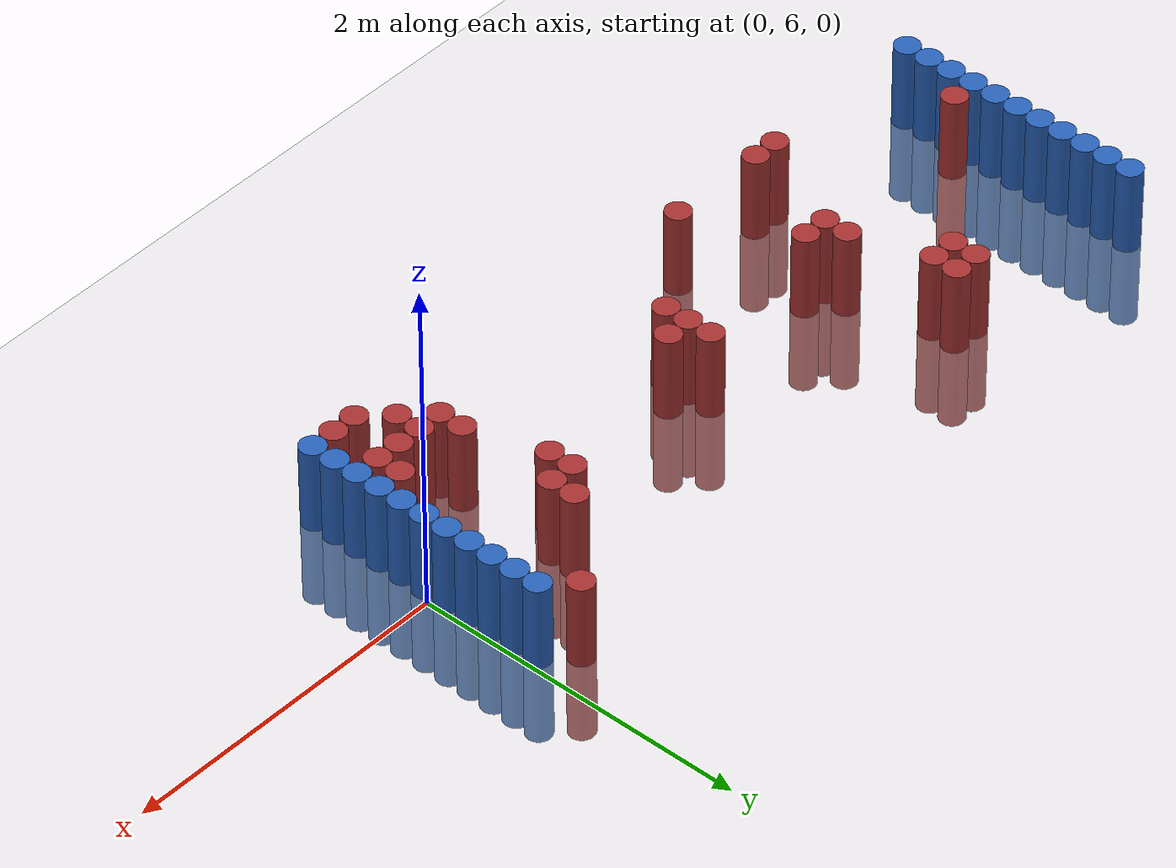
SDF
<sdf version="1.6">
 <world name="default">
  <model name="ground_plane">
   <static>1</static>
   <link name="link">
    <collision name="collision">
     <geometry><plane><normal>0 0 1</normal><size>100 100</size></plane></geometry>
     <surface><friction><ode><mu>100</mu><mu2>50</mu2></ode></friction></surface>
    </collision>
    <visual name="visual">
     <cast_shadows>0</cast_shadows>
     <geometry><plane><normal>0 0 1</normal><size>100 100</size></plane></geometry>
     <material>
      <script><uri>file://media/materials/scripts/gazebo.material</uri><name>Gazebo/Grey</name></script>
     </material>
    </visual>
   </link>
  </model>
  <model name="unit_cylinder_97">
   <static>1</static>
   <pose>-4.425000 5.325000 0.000000 0.000000 0.000000 0.000000</pose>
   <link name="link">
    <inertial>
     <mass>1</mass>
     <inertia><ixx>0.145833</ixx><ixy>0</ixy><ixz>0</ixz><iyy>0.145833</iyy><iyz>0</iyz><izz>0.125</izz></inertia>
    </inertial>
    <collision name="collision">
     <geometry><cylinder><radius>0.075000</radius><length>1</length></cylinder></geometry>
    </collision>
    <visual name="visual">
     <geometry><cylinder><radius>0.075000</radius><length>1</length></cylinder></geometry>
     <material>
      <ambient>0.152000 0.379000 0.720000 1</ambient>
      <diffuse>0.152000 0.379000 0.720000 1</diffuse>
     </material>
     <material>
      <script><name>Gazebo/Grey</name><uri>file://media/materials/scripts/gazebo.material</uri></script>
     </material>
    </visual>
   </link>
  </model>
  <model name="unit_cylinder_98">
   <static>1</static>
   <pose>-4.425000 5.475000 0.000000 0.000000 0.000000 0.000000</pose>
   <link name="link">
    <inertial>
     <mass>1</mass>
     <inertia><ixx>0.145833</ixx><ixy>0</ixy><ixz>0</ixz><iyy>0.145833</iyy><iyz>0</iyz><izz>0.125</izz></inertia>
    </inertial>
    <collision name="collision">
     <geometry><cylinder><radius>0.075000</radius><length>1</length></cylinder></geometry>
    </collision>
    <visual name="visual">
     <geometry><cylinder><radius>0.075000</radius><length>1</length></cylinder></geometry>
     <material>
      <ambient>0.152000 0.379000 0.720000 1</ambient>
      <diffuse>0.152000 0.379000 0.720000 1</diffuse>
     </material>
     <material>
      <script><name>Gazebo/Grey</name><uri>file://media/materials/scripts/gazebo.material</uri></script>
     </material>
    </visual>
   </link>
  </model>
  <model name="unit_cylinder_99">
   <static>1</static>
   <pose>-4.425000 5.625000 0.000000 0.000000 0.000000 0.000000</pose>
   <link name="link">
    <inertial>
     <mass>1</mass>
     <inertia><ixx>0.145833</ixx><ixy>0</ixy><ixz>0</ixz><iyy>0.145833</iyy><iyz>0</iyz><izz>0.125</izz></inertia>
    </inertial>
    <collision name="collision">
     <geometry><cylinder><radius>0.075000</radius><length>1</length></cylinder></geometry>
    </collision>
    <visual name="visual">
     <geometry><cylinder><radius>0.075000</radius><length>1</length></cylinder></geometry>
     <material>
      <ambient>0.152000 0.379000 0.720000 1</ambient>
      <diffuse>0.152000 0.379000 0.720000 1</diffuse>
     </material>
     <material>
      <script><name>Gazebo/Grey</name><uri>file://media/materials/scripts/gazebo.material</uri></script>
     </material>
    </visual>
   </link>
  </model>
  <model name="unit_cylinder_100">
   <static>1</static>
   <pose>-4.425000 5.775000 0.000000 0.000000 0.000000 0.000000</pose>
   <link name="link">
    <inertial>
     <mass>1</mass>
     <inertia><ixx>0.145833</ixx><ixy>0</ixy><ixz>0</ixz><iyy>0.145833</iyy><iyz>0</iyz><izz>0.125</izz></inertia>
    </inertial>
    <collision name="collision">
     <geometry><cylinder><radius>0.075000</radius><length>1</length></cylinder></geometry>
    </collision>
    <visual name="visual">
     <geometry><cylinder><radius>0.075000</radius><length>1</length></cylinder></geometry>
     <material>
      <ambient>0.152000 0.379000 0.720000 1</ambient>
      <diffuse>0.152000 0.379000 0.720000 1</diffuse>
     </material>
     <material>
      <script><name>Gazebo/Grey</name><uri>file://media/materials/scripts/gazebo.material</uri></script>
     </material>
    </visual>
   </link>
  </model>
  <model name="unit_cylinder_101">
   <static>1</static>
   <pose>-4.425000 5.925000 0.000000 0.000000 0.000000 0.000000</pose>
   <link name="link">
    <inertial>
     <mass>1</mass>
     <inertia><ixx>0.145833</ixx><ixy>0</ixy><ixz>0</ixz><iyy>0.145833</iyy><iyz>0</iyz><izz>0.125</izz></inertia>
    </inertial>
    <collision name="collision">
     <geometry><cylinder><radius>0.075000</radius><length>1</length></cylinder></geometry>
    </collision>
    <visual name="visual">
     <geometry><cylinder><radius>0.075000</radius><length>1</length></cylinder></geometry>
     <material>
      <ambient>0.152000 0.379000 0.720000 1</ambient>
      <diffuse>0.152000 0.379000 0.720000 1</diffuse>
     </material>
     <material>
      <script><name>Gazebo/Grey</name><uri>file://media/materials/scripts/gazebo.material</uri></script>
     </material>
    </visual>
   </link>
  </model>
  <model name="unit_cylinder_102">
   <static>1</static>
   <pose>-4.425000 6.075000 0.000000 0.000000 0.000000 0.000000</pose>
   <link name="link">
    <inertial>
     <mass>1</mass>
     <inertia><ixx>0.145833</ixx><ixy>0</ixy><ixz>0</ixz><iyy>0.145833</iyy><iyz>0</iyz><izz>0.125</izz></inertia>
    </inertial>
    <collision name="collision">
     <geometry><cylinder><radius>0.075000</radius><length>1</length></cylinder></geometry>
    </collision>
    <visual name="visual">
     <geometry><cylinder><radius>0.075000</radius><length>1</length></cylinder></geometry>
     <material>
      <ambient>0.152000 0.379000 0.720000 1</ambient>
      <diffuse>0.152000 0.379000 0.720000 1</diffuse>
     </material>
     <material>
      <script><name>Gazebo/Grey</name><uri>file://media/materials/scripts/gazebo.material</uri></script>
     </material>
    </visual>
   </link>
  </model>
  <model name="unit_cylinder_103">
   <static>1</static>
   <pose>-4.425000 6.225000 0.000000 0.000000 0.000000 0.000000</pose>
   <link name="link">
    <inertial>
     <mass>1</mass>
     <inertia><ixx>0.145833</ixx><ixy>0</ixy><ixz>0</ixz><iyy>0.145833</iyy><iyz>0</iyz><izz>0.125</izz></inertia>
    </inertial>
    <collision name="collision">
     <geometry><cylinder><radius>0.075000</radius><length>1</length></cylinder></geometry>
    </collision>
    <visual name="visual">
     <geometry><cylinder><radius>0.075000</radius><length>1</length></cylinder></geometry>
     <material>
      <ambient>0.152000 0.379000 0.720000 1</ambient>
      <diffuse>0.152000 0.379000 0.720000 1</diffuse>
     </material>
     <material>
      <script><name>Gazebo/Grey</name><uri>file://media/materials/scripts/gazebo.material</uri></script>
     </material>
    </visual>
   </link>
  </model>
  <model name="unit_cylinder_104">
   <static>1</static>
   <pose>-4.425000 6.375000 0.000000 0.000000 0.000000 0.000000</pose>
   <link name="link">
    <inertial>
     <mass>1</mass>
     <inertia><ixx>0.145833</ixx><ixy>0</ixy><ixz>0</ixz><iyy>0.145833</iyy><iyz>0</iyz><izz>0.125</izz></inertia>
    </inertial>
    <collision name="collision">
     <geometry><cylinder><radius>0.075000</radius><length>1</length></cylinder></geometry>
    </collision>
    <visual name="visual">
     <geometry><cylinder><radius>0.075000</radius><length>1</length></cylinder></geometry>
     <material>
      <ambient>0.152000 0.379000 0.720000 1</ambient>
      <diffuse>0.152000 0.379000 0.720000 1</diffuse>
     </material>
     <material>
      <script><name>Gazebo/Grey</name><uri>file://media/materials/scripts/gazebo.material</uri></script>
     </material>
    </visual>
   </link>
  </model>
  <model name="unit_cylinder_105">
   <static>1</static>
   <pose>-4.425000 6.525000 0.000000 0.000000 0.000000 0.000000</pose>
   <link name="link">
    <inertial>
     <mass>1</mass>
     <inertia><ixx>0.145833</ixx><ixy>0</ixy><ixz>0</ixz><iyy>0.145833</iyy><iyz>0</iyz><izz>0.125</izz></inertia>
    </inertial>
    <collision name="collision">
     <geometry><cylinder><radius>0.075000</radius><length>1</length></cylinder></geometry>
    </collision>
    <visual name="visual">
     <geometry><cylinder><radius>0.075000</radius><length>1</length></cylinder></geometry>
     <material>
      <ambient>0.152000 0.379000 0.720000 1</ambient>
      <diffuse>0.152000 0.379000 0.720000 1</diffuse>
     </material>
     <material>
      <script><name>Gazebo/Grey</name><uri>file://media/materials/scripts/gazebo.material</uri></script>
     </material>
    </visual>
   </link>
  </model>
  <model name="unit_cylinder_106">
   <static>1</static>
   <pose>-4.425000 6.675000 0.000000 0.000000 0.000000 0.000000</pose>
   <link name="link">
    <inertial>
     <mass>1</mass>
     <inertia><ixx>0.145833</ixx><ixy>0</ixy><ixz>0</ixz><iyy>0.145833</iyy><iyz>0</iyz><izz>0.125</izz></inertia>
    </inertial>
    <collision name="collision">
     <geometry><cylinder><radius>0.075000</radius><length>1</length></cylinder></geometry>
    </collision>
    <visual name="visual">
     <geometry><cylinder><radius>0.075000</radius><length>1</length></cylinder></geometry>
     <material>
      <ambient>0.152000 0.379000 0.720000 1</ambient>
      <diffuse>0.152000 0.379000 0.720000 1</diffuse>
     </material>
     <material>
      <script><name>Gazebo/Grey</name><uri>file://media/materials/scripts/gazebo.material</uri></script>
     </material>
    </visual>
   </link>
  </model>
  <model name="unit_cylinder_107">
   <static>1</static>
   <pose>-4.425000 6.825000 0.000000 0.000000 0.000000 0.000000</pose>
   <link name="link">
    <inertial>
     <mass>1</mass>
     <inertia><ixx>0.145833</ixx><ixy>0</ixy><ixz>0</ixz><iyy>0.145833</iyy><iyz>0</iyz><izz>0.125</izz></inertia>
    </inertial>
    <collision name="collision">
     <geometry><cylinder><radius>0.075000</radius><length>1</length></cylinder></geometry>
    </collision>
    <visual name="visual">
     <geometry><cylinder><radius>0.075000</radius><length>1</length></cylinder></geometry>
     <material>
      <ambient>0.152000 0.379000 0.720000 1</ambient>
      <diffuse>0.152000 0.379000 0.720000 1</diffuse>
     </material>
     <material>
      <script><name>Gazebo/Grey</name><uri>file://media/materials/scripts/gazebo.material</uri></script>
     </material>
    </visual>
   </link>
  </model>
  <model name="unit_cylinder_126">
   <static>1</static>
   <pose>-4.275000 5.775000 0.000000 0.000000 0.000000 0.000000</pose>
   <link name="link">
    <inertial>
     <mass>1</mass>
     <inertia><ixx>0.145833</ixx><ixy>0</ixy><ixz>0</ixz><iyy>0.145833</iyy><iyz>0</iyz><izz>0.125</izz></inertia>
    </inertial>
    <collision name="collision">
     <geometry><cylinder><radius>0.075000</radius><length>1</length></cylinder></geometry>
    </collision>
    <visual name="visual">
     <geometry><cylinder><radius>0.075000</radius><length>1</length></cylinder></geometry>
     <material>
      <ambient>0.648000 0.192000 0.192000 1</ambient>
      <diffuse>0.648000 0.192000 0.192000 1</diffuse>
     </material>
     <material>
      <script><name>Gazebo/Grey</name><uri>file://media/materials/scripts/gazebo.material</uri></script>
     </material>
    </visual>
   </link>
  </model>
  <model name="unit_cylinder_142">
   <static>1</static>
   <pose>-3.375000 5.325000 0.000000 0.000000 0.000000 0.000000</pose>
   <link name="link">
    <inertial>
     <mass>1</mass>
     <inertia><ixx>0.145833</ixx><ixy>0</ixy><ixz>0</ixz><iyy>0.145833</iyy><iyz>0</iyz><izz>0.125</izz></inertia>
    </inertial>
    <collision name="collision">
     <geometry><cylinder><radius>0.075000</radius><length>1</length></cylinder></geometry>
    </collision>
    <visual name="visual">
     <geometry><cylinder><radius>0.075000</radius><length>1</length></cylinder></geometry>
     <material>
      <ambient>0.648000 0.192000 0.192000 1</ambient>
      <diffuse>0.648000 0.192000 0.192000 1</diffuse>
     </material>
     <material>
      <script><name>Gazebo/Grey</name><uri>file://media/materials/scripts/gazebo.material</uri></script>
     </material>
    </visual>
   </link>
  </model>
  <model name="unit_cylinder_143">
   <static>1</static>
   <pose>-3.375000 6.525000 0.000000 0.000000 0.000000 0.000000</pose>
   <link name="link">
    <inertial>
     <mass>1</mass>
     <inertia><ixx>0.145833</ixx><ixy>0</ixy><ixz>0</ixz><iyy>0.145833</iyy><iyz>0</iyz><izz>0.125</izz></inertia>
    </inertial>
    <collision name="collision">
     <geometry><cylinder><radius>0.075000</radius><length>1</length></cylinder></geometry>
    </collision>
    <visual name="visual">
     <geometry><cylinder><radius>0.075000</radius><length>1</length></cylinder></geometry>
     <material>
      <ambient>0.648000 0.192000 0.192000 1</ambient>
      <diffuse>0.648000 0.192000 0.192000 1</diffuse>
     </material>
     <material>
      <script><name>Gazebo/Grey</name><uri>file://media/materials/scripts/gazebo.material</uri></script>
     </material>
    </visual>
   </link>
  </model>
  <model name="unit_cylinder_144">
   <static>1</static>
   <pose>-3.375000 6.675000 0.000000 0.000000 0.000000 0.000000</pose>
   <link name="link">
    <inertial>
     <mass>1</mass>
     <inertia><ixx>0.145833</ixx><ixy>0</ixy><ixz>0</ixz><iyy>0.145833</iyy><iyz>0</iyz><izz>0.125</izz></inertia>
    </inertial>
    <collision name="collision">
     <geometry><cylinder><radius>0.075000</radius><length>1</length></cylinder></geometry>
    </collision>
    <visual name="visual">
     <geometry><cylinder><radius>0.075000</radius><length>1</length></cylinder></geometry>
     <material>
      <ambient>0.648000 0.192000 0.192000 1</ambient>
      <diffuse>0.648000 0.192000 0.192000 1</diffuse>
     </material>
     <material>
      <script><name>Gazebo/Grey</name><uri>file://media/materials/scripts/gazebo.material</uri></script>
     </material>
    </visual>
   </link>
  </model>
  <model name="unit_cylinder_147">
   <static>1</static>
   <pose>-3.225000 5.325000 0.000000 0.000000 0.000000 0.000000</pose>
   <link name="link">
    <inertial>
     <mass>1</mass>
     <inertia><ixx>0.145833</ixx><ixy>0</ixy><ixz>0</ixz><iyy>0.145833</iyy><iyz>0</iyz><izz>0.125</izz></inertia>
    </inertial>
    <collision name="collision">
     <geometry><cylinder><radius>0.075000</radius><length>1</length></cylinder></geometry>
    </collision>
    <visual name="visual">
     <geometry><cylinder><radius>0.075000</radius><length>1</length></cylinder></geometry>
     <material>
      <ambient>0.648000 0.192000 0.192000 1</ambient>
      <diffuse>0.648000 0.192000 0.192000 1</diffuse>
     </material>
     <material>
      <script><name>Gazebo/Grey</name><uri>file://media/materials/scripts/gazebo.material</uri></script>
     </material>
    </visual>
   </link>
  </model>
  <model name="unit_cylinder_148">
   <static>1</static>
   <pose>-3.225000 6.525000 0.000000 0.000000 0.000000 0.000000</pose>
   <link name="link">
    <inertial>
     <mass>1</mass>
     <inertia><ixx>0.145833</ixx><ixy>0</ixy><ixz>0</ixz><iyy>0.145833</iyy><iyz>0</iyz><izz>0.125</izz></inertia>
    </inertial>
    <collision name="collision">
     <geometry><cylinder><radius>0.075000</radius><length>1</length></cylinder></geometry>
    </collision>
    <visual name="visual">
     <geometry><cylinder><radius>0.075000</radius><length>1</length></cylinder></geometry>
     <material>
      <ambient>0.648000 0.192000 0.192000 1</ambient>
      <diffuse>0.648000 0.192000 0.192000 1</diffuse>
     </material>
     <material>
      <script><name>Gazebo/Grey</name><uri>file://media/materials/scripts/gazebo.material</uri></script>
     </material>
    </visual>
   </link>
  </model>
  <model name="unit_cylinder_149">
   <static>1</static>
   <pose>-3.225000 6.675000 0.000000 0.000000 0.000000 0.000000</pose>
   <link name="link">
    <inertial>
     <mass>1</mass>
     <inertia><ixx>0.145833</ixx><ixy>0</ixy><ixz>0</ixz><iyy>0.145833</iyy><iyz>0</iyz><izz>0.125</izz></inertia>
    </inertial>
    <collision name="collision">
     <geometry><cylinder><radius>0.075000</radius><length>1</length></cylinder></geometry>
    </collision>
    <visual name="visual">
     <geometry><cylinder><radius>0.075000</radius><length>1</length></cylinder></geometry>
     <material>
      <ambient>0.648000 0.192000 0.192000 1</ambient>
      <diffuse>0.648000 0.192000 0.192000 1</diffuse>
     </material>
     <material>
      <script><name>Gazebo/Grey</name><uri>file://media/materials/scripts/gazebo.material</uri></script>
     </material>
    </visual>
   </link>
  </model>
  <model name="unit_cylinder_151">
   <static>1</static>
   <pose>-3.075000 5.925000 0.000000 0.000000 0.000000 0.000000</pose>
   <link name="link">
    <inertial>
     <mass>1</mass>
     <inertia><ixx>0.145833</ixx><ixy>0</ixy><ixz>0</ixz><iyy>0.145833</iyy><iyz>0</iyz><izz>0.125</izz></inertia>
    </inertial>
    <collision name="collision">
     <geometry><cylinder><radius>0.075000</radius><length>1</length></cylinder></geometry>
    </collision>
    <visual name="visual">
     <geometry><cylinder><radius>0.075000</radius><length>1</length></cylinder></geometry>
     <material>
      <ambient>0.648000 0.192000 0.192000 1</ambient>
      <diffuse>0.648000 0.192000 0.192000 1</diffuse>
     </material>
     <material>
      <script><name>Gazebo/Grey</name><uri>file://media/materials/scripts/gazebo.material</uri></script>
     </material>
    </visual>
   </link>
  </model>
  <model name="unit_cylinder_152">
   <static>1</static>
   <pose>-3.075000 6.075000 0.000000 0.000000 0.000000 0.000000</pose>
   <link name="link">
    <inertial>
     <mass>1</mass>
     <inertia><ixx>0.145833</ixx><ixy>0</ixy><ixz>0</ixz><iyy>0.145833</iyy><iyz>0</iyz><izz>0.125</izz></inertia>
    </inertial>
    <collision name="collision">
     <geometry><cylinder><radius>0.075000</radius><length>1</length></cylinder></geometry>
    </collision>
    <visual name="visual">
     <geometry><cylinder><radius>0.075000</radius><length>1</length></cylinder></geometry>
     <material>
      <ambient>0.648000 0.192000 0.192000 1</ambient>
      <diffuse>0.648000 0.192000 0.192000 1</diffuse>
     </material>
     <material>
      <script><name>Gazebo/Grey</name><uri>file://media/materials/scripts/gazebo.material</uri></script>
     </material>
    </visual>
   </link>
  </model>
  <model name="unit_cylinder_154">
   <static>1</static>
   <pose>-2.925000 5.925000 0.000000 0.000000 0.000000 0.000000</pose>
   <link name="link">
    <inertial>
     <mass>1</mass>
     <inertia><ixx>0.145833</ixx><ixy>0</ixy><ixz>0</ixz><iyy>0.145833</iyy><iyz>0</iyz><izz>0.125</izz></inertia>
    </inertial>
    <collision name="collision">
     <geometry><cylinder><radius>0.075000</radius><length>1</length></cylinder></geometry>
    </collision>
    <visual name="visual">
     <geometry><cylinder><radius>0.075000</radius><length>1</length></cylinder></geometry>
     <material>
      <ambient>0.648000 0.192000 0.192000 1</ambient>
      <diffuse>0.648000 0.192000 0.192000 1</diffuse>
     </material>
     <material>
      <script><name>Gazebo/Grey</name><uri>file://media/materials/scripts/gazebo.material</uri></script>
     </material>
    </visual>
   </link>
  </model>
  <model name="unit_cylinder_160">
   <static>1</static>
   <pose>-2.625000 5.325000 0.000000 0.000000 0.000000 0.000000</pose>
   <link name="link">
    <inertial>
     <mass>1</mass>
     <inertia><ixx>0.145833</ixx><ixy>0</ixy><ixz>0</ixz><iyy>0.145833</iyy><iyz>0</iyz><izz>0.125</izz></inertia>
    </inertial>
    <collision name="collision">
     <geometry><cylinder><radius>0.075000</radius><length>1</length></cylinder></geometry>
    </collision>
    <visual name="visual">
     <geometry><cylinder><radius>0.075000</radius><length>1</length></cylinder></geometry>
     <material>
      <ambient>0.648000 0.192000 0.192000 1</ambient>
      <diffuse>0.648000 0.192000 0.192000 1</diffuse>
     </material>
     <material>
      <script><name>Gazebo/Grey</name><uri>file://media/materials/scripts/gazebo.material</uri></script>
     </material>
    </visual>
   </link>
  </model>
  <model name="unit_cylinder_168">
   <static>1</static>
   <pose>-2.025000 5.775000 0.000000 0.000000 0.000000 0.000000</pose>
   <link name="link">
    <inertial>
     <mass>1</mass>
     <inertia><ixx>0.145833</ixx><ixy>0</ixy><ixz>0</ixz><iyy>0.145833</iyy><iyz>0</iyz><izz>0.125</izz></inertia>
    </inertial>
    <collision name="collision">
     <geometry><cylinder><radius>0.075000</radius><length>1</length></cylinder></geometry>
    </collision>
    <visual name="visual">
     <geometry><cylinder><radius>0.075000</radius><length>1</length></cylinder></geometry>
     <material>
      <ambient>0.648000 0.192000 0.192000 1</ambient>
      <diffuse>0.648000 0.192000 0.192000 1</diffuse>
     </material>
     <material>
      <script><name>Gazebo/Grey</name><uri>file://media/materials/scripts/gazebo.material</uri></script>
     </material>
    </visual>
   </link>
  </model>
  <model name="unit_cylinder_169">
   <static>1</static>
   <pose>-2.025000 5.925000 0.000000 0.000000 0.000000 0.000000</pose>
   <link name="link">
    <inertial>
     <mass>1</mass>
     <inertia><ixx>0.145833</ixx><ixy>0</ixy><ixz>0</ixz><iyy>0.145833</iyy><iyz>0</iyz><izz>0.125</izz></inertia>
    </inertial>
    <collision name="collision">
     <geometry><cylinder><radius>0.075000</radius><length>1</length></cylinder></geometry>
    </collision>
    <visual name="visual">
     <geometry><cylinder><radius>0.075000</radius><length>1</length></cylinder></geometry>
     <material>
      <ambient>0.648000 0.192000 0.192000 1</ambient>
      <diffuse>0.648000 0.192000 0.192000 1</diffuse>
     </material>
     <material>
      <script><name>Gazebo/Grey</name><uri>file://media/materials/scripts/gazebo.material</uri></script>
     </material>
    </visual>
   </link>
  </model>
  <model name="unit_cylinder_170">
   <static>1</static>
   <pose>-2.025000 6.075000 0.000000 0.000000 0.000000 0.000000</pose>
   <link name="link">
    <inertial>
     <mass>1</mass>
     <inertia><ixx>0.145833</ixx><ixy>0</ixy><ixz>0</ixz><iyy>0.145833</iyy><iyz>0</iyz><izz>0.125</izz></inertia>
    </inertial>
    <collision name="collision">
     <geometry><cylinder><radius>0.075000</radius><length>1</length></cylinder></geometry>
    </collision>
    <visual name="visual">
     <geometry><cylinder><radius>0.075000</radius><length>1</length></cylinder></geometry>
     <material>
      <ambient>0.648000 0.192000 0.192000 1</ambient>
      <diffuse>0.648000 0.192000 0.192000 1</diffuse>
     </material>
     <material>
      <script><name>Gazebo/Grey</name><uri>file://media/materials/scripts/gazebo.material</uri></script>
     </material>
    </visual>
   </link>
  </model>
  <model name="unit_cylinder_171">
   <static>1</static>
   <pose>-1.875000 5.925000 0.000000 0.000000 0.000000 0.000000</pose>
   <link name="link">
    <inertial>
     <mass>1</mass>
     <inertia><ixx>0.145833</ixx><ixy>0</ixy><ixz>0</ixz><iyy>0.145833</iyy><iyz>0</iyz><izz>0.125</izz></inertia>
    </inertial>
    <collision name="collision">
     <geometry><cylinder><radius>0.075000</radius><length>1</length></cylinder></geometry>
    </collision>
    <visual name="visual">
     <geometry><cylinder><radius>0.075000</radius><length>1</length></cylinder></geometry>
     <material>
      <ambient>0.648000 0.192000 0.192000 1</ambient>
      <diffuse>0.648000 0.192000 0.192000 1</diffuse>
     </material>
     <material>
      <script><name>Gazebo/Grey</name><uri>file://media/materials/scripts/gazebo.material</uri></script>
     </material>
    </visual>
   </link>
  </model>
  <model name="unit_cylinder_181">
   <static>1</static>
   <pose>-0.825000 6.075000 0.000000 0.000000 0.000000 0.000000</pose>
   <link name="link">
    <inertial>
     <mass>1</mass>
     <inertia><ixx>0.145833</ixx><ixy>0</ixy><ixz>0</ixz><iyy>0.145833</iyy><iyz>0</iyz><izz>0.125</izz></inertia>
    </inertial>
    <collision name="collision">
     <geometry><cylinder><radius>0.075000</radius><length>1</length></cylinder></geometry>
    </collision>
    <visual name="visual">
     <geometry><cylinder><radius>0.075000</radius><length>1</length></cylinder></geometry>
     <material>
      <ambient>0.648000 0.192000 0.192000 1</ambient>
      <diffuse>0.648000 0.192000 0.192000 1</diffuse>
     </material>
     <material>
      <script><name>Gazebo/Grey</name><uri>file://media/materials/scripts/gazebo.material</uri></script>
     </material>
    </visual>
   </link>
  </model>
  <model name="unit_cylinder_182">
   <static>1</static>
   <pose>-0.825000 6.225000 0.000000 0.000000 0.000000 0.000000</pose>
   <link name="link">
    <inertial>
     <mass>1</mass>
     <inertia><ixx>0.145833</ixx><ixy>0</ixy><ixz>0</ixz><iyy>0.145833</iyy><iyz>0</iyz><izz>0.125</izz></inertia>
    </inertial>
    <collision name="collision">
     <geometry><cylinder><radius>0.075000</radius><length>1</length></cylinder></geometry>
    </collision>
    <visual name="visual">
     <geometry><cylinder><radius>0.075000</radius><length>1</length></cylinder></geometry>
     <material>
      <ambient>0.648000 0.192000 0.192000 1</ambient>
      <diffuse>0.648000 0.192000 0.192000 1</diffuse>
     </material>
     <material>
      <script><name>Gazebo/Grey</name><uri>file://media/materials/scripts/gazebo.material</uri></script>
     </material>
    </visual>
   </link>
  </model>
  <model name="unit_cylinder_184">
   <static>1</static>
   <pose>-0.675000 5.475000 0.000000 0.000000 0.000000 0.000000</pose>
   <link name="link">
    <inertial>
     <mass>1</mass>
     <inertia><ixx>0.145833</ixx><ixy>0</ixy><ixz>0</ixz><iyy>0.145833</iyy><iyz>0</iyz><izz>0.125</izz></inertia>
    </inertial>
    <collision name="collision">
     <geometry><cylinder><radius>0.075000</radius><length>1</length></cylinder></geometry>
    </collision>
    <visual name="visual">
     <geometry><cylinder><radius>0.075000</radius><length>1</length></cylinder></geometry>
     <material>
      <ambient>0.648000 0.192000 0.192000 1</ambient>
      <diffuse>0.648000 0.192000 0.192000 1</diffuse>
     </material>
     <material>
      <script><name>Gazebo/Grey</name><uri>file://media/materials/scripts/gazebo.material</uri></script>
     </material>
    </visual>
   </link>
  </model>
  <model name="unit_cylinder_185">
   <static>1</static>
   <pose>-0.675000 5.625000 0.000000 0.000000 0.000000 0.000000</pose>
   <link name="link">
    <inertial>
     <mass>1</mass>
     <inertia><ixx>0.145833</ixx><ixy>0</ixy><ixz>0</ixz><iyy>0.145833</iyy><iyz>0</iyz><izz>0.125</izz></inertia>
    </inertial>
    <collision name="collision">
     <geometry><cylinder><radius>0.075000</radius><length>1</length></cylinder></geometry>
    </collision>
    <visual name="visual">
     <geometry><cylinder><radius>0.075000</radius><length>1</length></cylinder></geometry>
     <material>
      <ambient>0.648000 0.192000 0.192000 1</ambient>
      <diffuse>0.648000 0.192000 0.192000 1</diffuse>
     </material>
     <material>
      <script><name>Gazebo/Grey</name><uri>file://media/materials/scripts/gazebo.material</uri></script>
     </material>
    </visual>
   </link>
  </model>
  <model name="unit_cylinder_186">
   <static>1</static>
   <pose>-0.675000 6.225000 0.000000 0.000000 0.000000 0.000000</pose>
   <link name="link">
    <inertial>
     <mass>1</mass>
     <inertia><ixx>0.145833</ixx><ixy>0</ixy><ixz>0</ixz><iyy>0.145833</iyy><iyz>0</iyz><izz>0.125</izz></inertia>
    </inertial>
    <collision name="collision">
     <geometry><cylinder><radius>0.075000</radius><length>1</length></cylinder></geometry>
    </collision>
    <visual name="visual">
     <geometry><cylinder><radius>0.075000</radius><length>1</length></cylinder></geometry>
     <material>
      <ambient>0.648000 0.192000 0.192000 1</ambient>
      <diffuse>0.648000 0.192000 0.192000 1</diffuse>
     </material>
     <material>
      <script><name>Gazebo/Grey</name><uri>file://media/materials/scripts/gazebo.material</uri></script>
     </material>
    </visual>
   </link>
  </model>
  <model name="unit_cylinder_187">
   <static>1</static>
   <pose>-0.675000 6.375000 0.000000 0.000000 0.000000 0.000000</pose>
   <link name="link">
    <inertial>
     <mass>1</mass>
     <inertia><ixx>0.145833</ixx><ixy>0</ixy><ixz>0</ixz><iyy>0.145833</iyy><iyz>0</iyz><izz>0.125</izz></inertia>
    </inertial>
    <collision name="collision">
     <geometry><cylinder><radius>0.075000</radius><length>1</length></cylinder></geometry>
    </collision>
    <visual name="visual">
     <geometry><cylinder><radius>0.075000</radius><length>1</length></cylinder></geometry>
     <material>
      <ambient>0.648000 0.192000 0.192000 1</ambient>
      <diffuse>0.648000 0.192000 0.192000 1</diffuse>
     </material>
     <material>
      <script><name>Gazebo/Grey</name><uri>file://media/materials/scripts/gazebo.material</uri></script>
     </material>
    </visual>
   </link>
  </model>
  <model name="unit_cylinder_193">
   <static>1</static>
   <pose>-0.525000 5.325000 0.000000 0.000000 0.000000 0.000000</pose>
   <link name="link">
    <inertial>
     <mass>1</mass>
     <inertia><ixx>0.145833</ixx><ixy>0</ixy><ixz>0</ixz><iyy>0.145833</iyy><iyz>0</iyz><izz>0.125</izz></inertia>
    </inertial>
    <collision name="collision">
     <geometry><cylinder><radius>0.075000</radius><length>1</length></cylinder></geometry>
    </collision>
    <visual name="visual">
     <geometry><cylinder><radius>0.075000</radius><length>1</length></cylinder></geometry>
     <material>
      <ambient>0.648000 0.192000 0.192000 1</ambient>
      <diffuse>0.648000 0.192000 0.192000 1</diffuse>
     </material>
     <material>
      <script><name>Gazebo/Grey</name><uri>file://media/materials/scripts/gazebo.material</uri></script>
     </material>
    </visual>
   </link>
  </model>
  <model name="unit_cylinder_194">
   <static>1</static>
   <pose>-0.525000 5.475000 0.000000 0.000000 0.000000 0.000000</pose>
   <link name="link">
    <inertial>
     <mass>1</mass>
     <inertia><ixx>0.145833</ixx><ixy>0</ixy><ixz>0</ixz><iyy>0.145833</iyy><iyz>0</iyz><izz>0.125</izz></inertia>
    </inertial>
    <collision name="collision">
     <geometry><cylinder><radius>0.075000</radius><length>1</length></cylinder></geometry>
    </collision>
    <visual name="visual">
     <geometry><cylinder><radius>0.075000</radius><length>1</length></cylinder></geometry>
     <material>
      <ambient>0.648000 0.192000 0.192000 1</ambient>
      <diffuse>0.648000 0.192000 0.192000 1</diffuse>
     </material>
     <material>
      <script><name>Gazebo/Grey</name><uri>file://media/materials/scripts/gazebo.material</uri></script>
     </material>
    </visual>
   </link>
  </model>
  <model name="unit_cylinder_198">
   <static>1</static>
   <pose>-0.375000 5.175000 0.000000 0.000000 0.000000 0.000000</pose>
   <link name="link">
    <inertial>
     <mass>1</mass>
     <inertia><ixx>0.145833</ixx><ixy>0</ixy><ixz>0</ixz><iyy>0.145833</iyy><iyz>0</iyz><izz>0.125</izz></inertia>
    </inertial>
    <collision name="collision">
     <geometry><cylinder><radius>0.075000</radius><length>1</length></cylinder></geometry>
    </collision>
    <visual name="visual">
     <geometry><cylinder><radius>0.075000</radius><length>1</length></cylinder></geometry>
     <material>
      <ambient>0.648000 0.192000 0.192000 1</ambient>
      <diffuse>0.648000 0.192000 0.192000 1</diffuse>
     </material>
     <material>
      <script><name>Gazebo/Grey</name><uri>file://media/materials/scripts/gazebo.material</uri></script>
     </material>
    </visual>
   </link>
  </model>
  <model name="unit_cylinder_199">
   <static>1</static>
   <pose>-0.375000 5.475000 0.000000 0.000000 0.000000 0.000000</pose>
   <link name="link">
    <inertial>
     <mass>1</mass>
     <inertia><ixx>0.145833</ixx><ixy>0</ixy><ixz>0</ixz><iyy>0.145833</iyy><iyz>0</iyz><izz>0.125</izz></inertia>
    </inertial>
    <collision name="collision">
     <geometry><cylinder><radius>0.075000</radius><length>1</length></cylinder></geometry>
    </collision>
    <visual name="visual">
     <geometry><cylinder><radius>0.075000</radius><length>1</length></cylinder></geometry>
     <material>
      <ambient>0.648000 0.192000 0.192000 1</ambient>
      <diffuse>0.648000 0.192000 0.192000 1</diffuse>
     </material>
     <material>
      <script><name>Gazebo/Grey</name><uri>file://media/materials/scripts/gazebo.material</uri></script>
     </material>
    </visual>
   </link>
  </model>
  <model name="unit_cylinder_210">
   <static>1</static>
   <pose>-0.225000 5.175000 0.000000 0.000000 0.000000 0.000000</pose>
   <link name="link">
    <inertial>
     <mass>1</mass>
     <inertia><ixx>0.145833</ixx><ixy>0</ixy><ixz>0</ixz><iyy>0.145833</iyy><iyz>0</iyz><izz>0.125</izz></inertia>
    </inertial>
    <collision name="collision">
     <geometry><cylinder><radius>0.075000</radius><length>1</length></cylinder></geometry>
    </collision>
    <visual name="visual">
     <geometry><cylinder><radius>0.075000</radius><length>1</length></cylinder></geometry>
     <material>
      <ambient>0.648000 0.192000 0.192000 1</ambient>
      <diffuse>0.648000 0.192000 0.192000 1</diffuse>
     </material>
     <material>
      <script><name>Gazebo/Grey</name><uri>file://media/materials/scripts/gazebo.material</uri></script>
     </material>
    </visual>
   </link>
  </model>
  <model name="unit_cylinder_211">
   <static>1</static>
   <pose>-0.225000 5.475000 0.000000 0.000000 0.000000 0.000000</pose>
   <link name="link">
    <inertial>
     <mass>1</mass>
     <inertia><ixx>0.145833</ixx><ixy>0</ixy><ixz>0</ixz><iyy>0.145833</iyy><iyz>0</iyz><izz>0.125</izz></inertia>
    </inertial>
    <collision name="collision">
     <geometry><cylinder><radius>0.075000</radius><length>1</length></cylinder></geometry>
    </collision>
    <visual name="visual">
     <geometry><cylinder><radius>0.075000</radius><length>1</length></cylinder></geometry>
     <material>
      <ambient>0.648000 0.192000 0.192000 1</ambient>
      <diffuse>0.648000 0.192000 0.192000 1</diffuse>
     </material>
     <material>
      <script><name>Gazebo/Grey</name><uri>file://media/materials/scripts/gazebo.material</uri></script>
     </material>
    </visual>
   </link>
  </model>
  <model name="unit_cylinder_212">
   <static>1</static>
   <pose>-0.225000 5.625000 0.000000 0.000000 0.000000 0.000000</pose>
   <link name="link">
    <inertial>
     <mass>1</mass>
     <inertia><ixx>0.145833</ixx><ixy>0</ixy><ixz>0</ixz><iyy>0.145833</iyy><iyz>0</iyz><izz>0.125</izz></inertia>
    </inertial>
    <collision name="collision">
     <geometry><cylinder><radius>0.075000</radius><length>1</length></cylinder></geometry>
    </collision>
    <visual name="visual">
     <geometry><cylinder><radius>0.075000</radius><length>1</length></cylinder></geometry>
     <material>
      <ambient>0.648000 0.192000 0.192000 1</ambient>
      <diffuse>0.648000 0.192000 0.192000 1</diffuse>
     </material>
     <material>
      <script><name>Gazebo/Grey</name><uri>file://media/materials/scripts/gazebo.material</uri></script>
     </material>
    </visual>
   </link>
  </model>
  <model name="unit_cylinder_213">
   <static>1</static>
   <pose>-0.225000 6.825000 0.000000 0.000000 0.000000 0.000000</pose>
   <link name="link">
    <inertial>
     <mass>1</mass>
     <inertia><ixx>0.145833</ixx><ixy>0</ixy><ixz>0</ixz><iyy>0.145833</iyy><iyz>0</iyz><izz>0.125</izz></inertia>
    </inertial>
    <collision name="collision">
     <geometry><cylinder><radius>0.075000</radius><length>1</length></cylinder></geometry>
    </collision>
    <visual name="visual">
     <geometry><cylinder><radius>0.075000</radius><length>1</length></cylinder></geometry>
     <material>
      <ambient>0.648000 0.192000 0.192000 1</ambient>
      <diffuse>0.648000 0.192000 0.192000 1</diffuse>
     </material>
     <material>
      <script><name>Gazebo/Grey</name><uri>file://media/materials/scripts/gazebo.material</uri></script>
     </material>
    </visual>
   </link>
  </model>
  <model name="unit_cylinder_225">
   <static>1</static>
   <pose>-0.075000 5.175000 0.000000 0.000000 0.000000 0.000000</pose>
   <link name="link">
    <inertial>
     <mass>1</mass>
     <inertia><ixx>0.145833</ixx><ixy>0</ixy><ixz>0</ixz><iyy>0.145833</iyy><iyz>0</iyz><izz>0.125</izz></inertia>
    </inertial>
    <collision name="collision">
     <geometry><cylinder><radius>0.075000</radius><length>1</length></cylinder></geometry>
    </collision>
    <visual name="visual">
     <geometry><cylinder><radius>0.075000</radius><length>1</length></cylinder></geometry>
     <material>
      <ambient>0.152000 0.379000 0.720000 1</ambient>
      <diffuse>0.152000 0.379000 0.720000 1</diffuse>
     </material>
     <material>
      <script><name>Gazebo/Grey</name><uri>file://media/materials/scripts/gazebo.material</uri></script>
     </material>
    </visual>
   </link>
  </model>
  <model name="unit_cylinder_226">
   <static>1</static>
   <pose>-0.075000 5.325000 0.000000 0.000000 0.000000 0.000000</pose>
   <link name="link">
    <inertial>
     <mass>1</mass>
     <inertia><ixx>0.145833</ixx><ixy>0</ixy><ixz>0</ixz><iyy>0.145833</iyy><iyz>0</iyz><izz>0.125</izz></inertia>
    </inertial>
    <collision name="collision">
     <geometry><cylinder><radius>0.075000</radius><length>1</length></cylinder></geometry>
    </collision>
    <visual name="visual">
     <geometry><cylinder><radius>0.075000</radius><length>1</length></cylinder></geometry>
     <material>
      <ambient>0.152000 0.379000 0.720000 1</ambient>
      <diffuse>0.152000 0.379000 0.720000 1</diffuse>
     </material>
     <material>
      <script><name>Gazebo/Grey</name><uri>file://media/materials/scripts/gazebo.material</uri></script>
     </material>
    </visual>
   </link>
  </model>
  <model name="unit_cylinder_227">
   <static>1</static>
   <pose>-0.075000 5.475000 0.000000 0.000000 0.000000 0.000000</pose>
   <link name="link">
    <inertial>
     <mass>1</mass>
     <inertia><ixx>0.145833</ixx><ixy>0</ixy><ixz>0</ixz><iyy>0.145833</iyy><iyz>0</iyz><izz>0.125</izz></inertia>
    </inertial>
    <collision name="collision">
     <geometry><cylinder><radius>0.075000</radius><length>1</length></cylinder></geometry>
    </collision>
    <visual name="visual">
     <geometry><cylinder><radius>0.075000</radius><length>1</length></cylinder></geometry>
     <material>
      <ambient>0.152000 0.379000 0.720000 1</ambient>
      <diffuse>0.152000 0.379000 0.720000 1</diffuse>
     </material>
     <material>
      <script><name>Gazebo/Grey</name><uri>file://media/materials/scripts/gazebo.material</uri></script>
     </material>
    </visual>
   </link>
  </model>
  <model name="unit_cylinder_228">
   <static>1</static>
   <pose>-0.075000 5.625000 0.000000 0.000000 0.000000 0.000000</pose>
   <link name="link">
    <inertial>
     <mass>1</mass>
     <inertia><ixx>0.145833</ixx><ixy>0</ixy><ixz>0</ixz><iyy>0.145833</iyy><iyz>0</iyz><izz>0.125</izz></inertia>
    </inertial>
    <collision name="collision">
     <geometry><cylinder><radius>0.075000</radius><length>1</length></cylinder></geometry>
    </collision>
    <visual name="visual">
     <geometry><cylinder><radius>0.075000</radius><length>1</length></cylinder></geometry>
     <material>
      <ambient>0.152000 0.379000 0.720000 1</ambient>
      <diffuse>0.152000 0.379000 0.720000 1</diffuse>
     </material>
     <material>
      <script><name>Gazebo/Grey</name><uri>file://media/materials/scripts/gazebo.material</uri></script>
     </material>
    </visual>
   </link>
  </model>
  <model name="unit_cylinder_229">
   <static>1</static>
   <pose>-0.075000 5.775000 0.000000 0.000000 0.000000 0.000000</pose>
   <link name="link">
    <inertial>
     <mass>1</mass>
     <inertia><ixx>0.145833</ixx><ixy>0</ixy><ixz>0</ixz><iyy>0.145833</iyy><iyz>0</iyz><izz>0.125</izz></inertia>
    </inertial>
    <collision name="collision">
     <geometry><cylinder><radius>0.075000</radius><length>1</length></cylinder></geometry>
    </collision>
    <visual name="visual">
     <geometry><cylinder><radius>0.075000</radius><length>1</length></cylinder></geometry>
     <material>
      <ambient>0.152000 0.379000 0.720000 1</ambient>
      <diffuse>0.152000 0.379000 0.720000 1</diffuse>
     </material>
     <material>
      <script><name>Gazebo/Grey</name><uri>file://media/materials/scripts/gazebo.material</uri></script>
     </material>
    </visual>
   </link>
  </model>
  <model name="unit_cylinder_230">
   <static>1</static>
   <pose>-0.075000 5.925000 0.000000 0.000000 0.000000 0.000000</pose>
   <link name="link">
    <inertial>
     <mass>1</mass>
     <inertia><ixx>0.145833</ixx><ixy>0</ixy><ixz>0</ixz><iyy>0.145833</iyy><iyz>0</iyz><izz>0.125</izz></inertia>
    </inertial>
    <collision name="collision">
     <geometry><cylinder><radius>0.075000</radius><length>1</length></cylinder></geometry>
    </collision>
    <visual name="visual">
     <geometry><cylinder><radius>0.075000</radius><length>1</length></cylinder></geometry>
     <material>
      <ambient>0.152000 0.379000 0.720000 1</ambient>
      <diffuse>0.152000 0.379000 0.720000 1</diffuse>
     </material>
     <material>
      <script><name>Gazebo/Grey</name><uri>file://media/materials/scripts/gazebo.material</uri></script>
     </material>
    </visual>
   </link>
  </model>
  <model name="unit_cylinder_231">
   <static>1</static>
   <pose>-0.075000 6.075000 0.000000 0.000000 0.000000 0.000000</pose>
   <link name="link">
    <inertial>
     <mass>1</mass>
     <inertia><ixx>0.145833</ixx><ixy>0</ixy><ixz>0</ixz><iyy>0.145833</iyy><iyz>0</iyz><izz>0.125</izz></inertia>
    </inertial>
    <collision name="collision">
     <geometry><cylinder><radius>0.075000</radius><length>1</length></cylinder></geometry>
    </collision>
    <visual name="visual">
     <geometry><cylinder><radius>0.075000</radius><length>1</length></cylinder></geometry>
     <material>
      <ambient>0.152000 0.379000 0.720000 1</ambient>
      <diffuse>0.152000 0.379000 0.720000 1</diffuse>
     </material>
     <material>
      <script><name>Gazebo/Grey</name><uri>file://media/materials/scripts/gazebo.material</uri></script>
     </material>
    </visual>
   </link>
  </model>
  <model name="unit_cylinder_232">
   <static>1</static>
   <pose>-0.075000 6.225000 0.000000 0.000000 0.000000 0.000000</pose>
   <link name="link">
    <inertial>
     <mass>1</mass>
     <inertia><ixx>0.145833</ixx><ixy>0</ixy><ixz>0</ixz><iyy>0.145833</iyy><iyz>0</iyz><izz>0.125</izz></inertia>
    </inertial>
    <collision name="collision">
     <geometry><cylinder><radius>0.075000</radius><length>1</length></cylinder></geometry>
    </collision>
    <visual name="visual">
     <geometry><cylinder><radius>0.075000</radius><length>1</length></cylinder></geometry>
     <material>
      <ambient>0.152000 0.379000 0.720000 1</ambient>
      <diffuse>0.152000 0.379000 0.720000 1</diffuse>
     </material>
     <material>
      <script><name>Gazebo/Grey</name><uri>file://media/materials/scripts/gazebo.material</uri></script>
     </material>
    </visual>
   </link>
  </model>
  <model name="unit_cylinder_233">
   <static>1</static>
   <pose>-0.075000 6.375000 0.000000 0.000000 0.000000 0.000000</pose>
   <link name="link">
    <inertial>
     <mass>1</mass>
     <inertia><ixx>0.145833</ixx><ixy>0</ixy><ixz>0</ixz><iyy>0.145833</iyy><iyz>0</iyz><izz>0.125</izz></inertia>
    </inertial>
    <collision name="collision">
     <geometry><cylinder><radius>0.075000</radius><length>1</length></cylinder></geometry>
    </collision>
    <visual name="visual">
     <geometry><cylinder><radius>0.075000</radius><length>1</length></cylinder></geometry>
     <material>
      <ambient>0.152000 0.379000 0.720000 1</ambient>
      <diffuse>0.152000 0.379000 0.720000 1</diffuse>
     </material>
     <material>
      <script><name>Gazebo/Grey</name><uri>file://media/materials/scripts/gazebo.material</uri></script>
     </material>
    </visual>
   </link>
  </model>
  <model name="unit_cylinder_234">
   <static>1</static>
   <pose>-0.075000 6.525000 0.000000 0.000000 0.000000 0.000000</pose>
   <link name="link">
    <inertial>
     <mass>1</mass>
     <inertia><ixx>0.145833</ixx><ixy>0</ixy><ixz>0</ixz><iyy>0.145833</iyy><iyz>0</iyz><izz>0.125</izz></inertia>
    </inertial>
    <collision name="collision">
     <geometry><cylinder><radius>0.075000</radius><length>1</length></cylinder></geometry>
    </collision>
    <visual name="visual">
     <geometry><cylinder><radius>0.075000</radius><length>1</length></cylinder></geometry>
     <material>
      <ambient>0.152000 0.379000 0.720000 1</ambient>
      <diffuse>0.152000 0.379000 0.720000 1</diffuse>
     </material>
     <material>
      <script><name>Gazebo/Grey</name><uri>file://media/materials/scripts/gazebo.material</uri></script>
     </material>
    </visual>
   </link>
  </model>
  <model name="unit_cylinder_235">
   <static>1</static>
   <pose>-0.075000 6.675000 0.000000 0.000000 0.000000 0.000000</pose>
   <link name="link">
    <inertial>
     <mass>1</mass>
     <inertia><ixx>0.145833</ixx><ixy>0</ixy><ixz>0</ixz><iyy>0.145833</iyy><iyz>0</iyz><izz>0.125</izz></inertia>
    </inertial>
    <collision name="collision">
     <geometry><cylinder><radius>0.075000</radius><length>1</length></cylinder></geometry>
    </collision>
    <visual name="visual">
     <geometry><cylinder><radius>0.075000</radius><length>1</length></cylinder></geometry>
     <material>
      <ambient>0.152000 0.379000 0.720000 1</ambient>
      <diffuse>0.152000 0.379000 0.720000 1</diffuse>
     </material>
     <material>
      <script><name>Gazebo/Grey</name><uri>file://media/materials/scripts/gazebo.material</uri></script>
     </material>
    </visual>
   </link>
  </model>
 </world>
</sdf>
